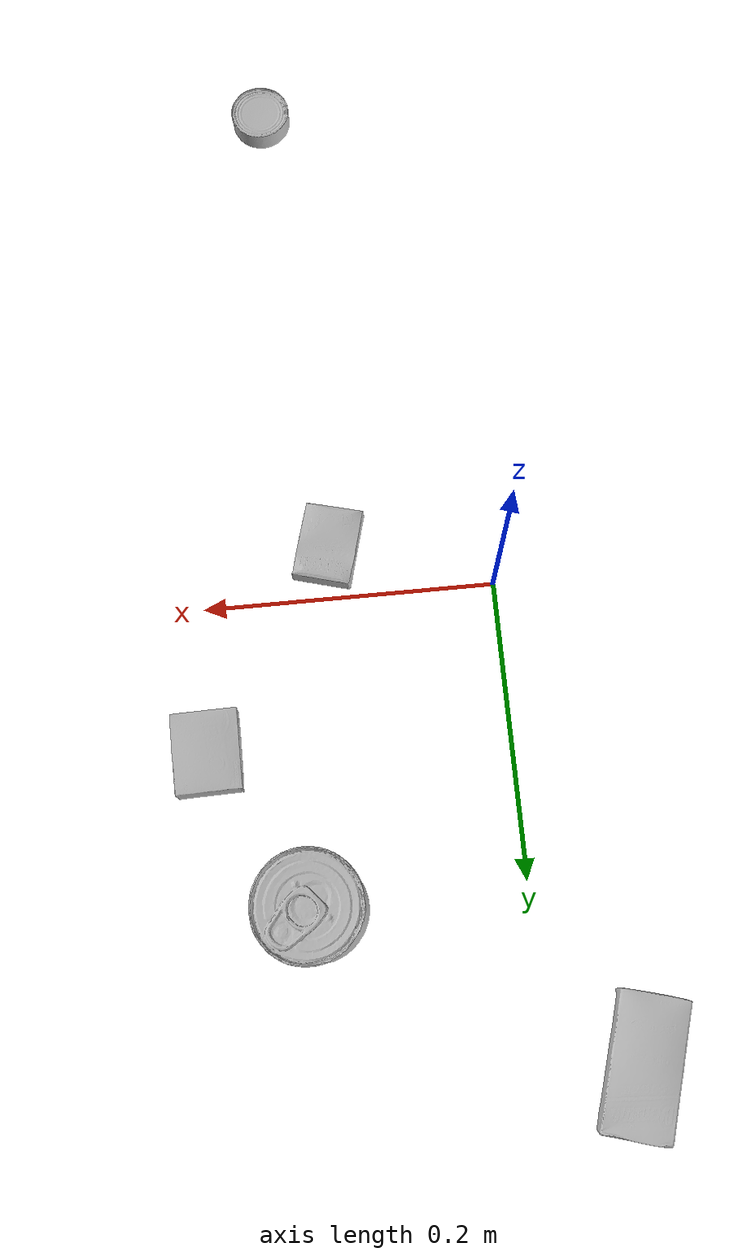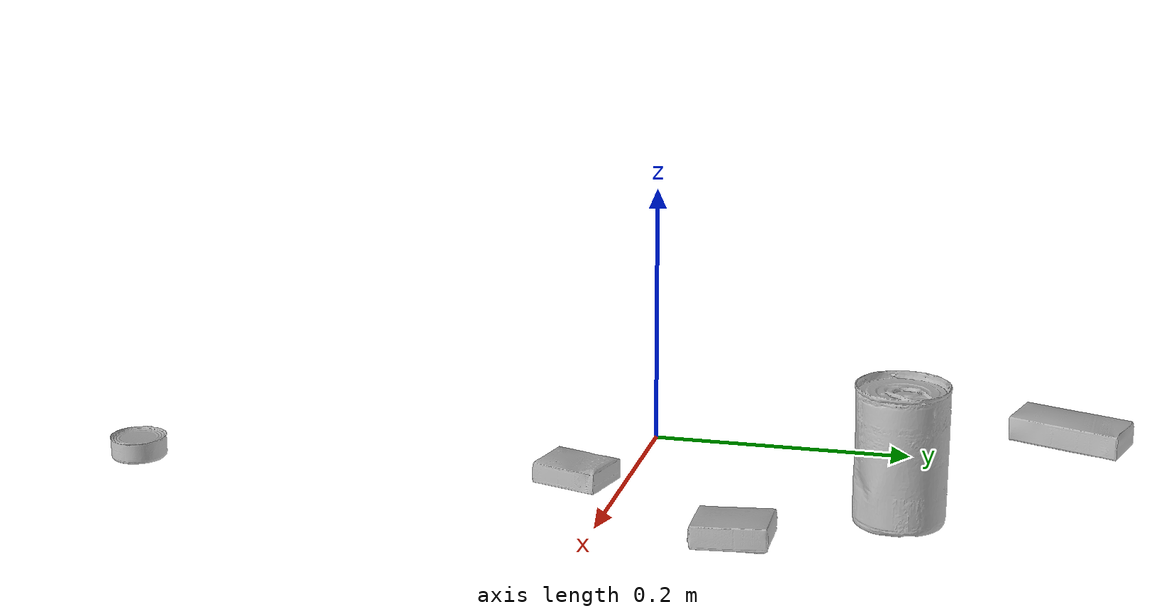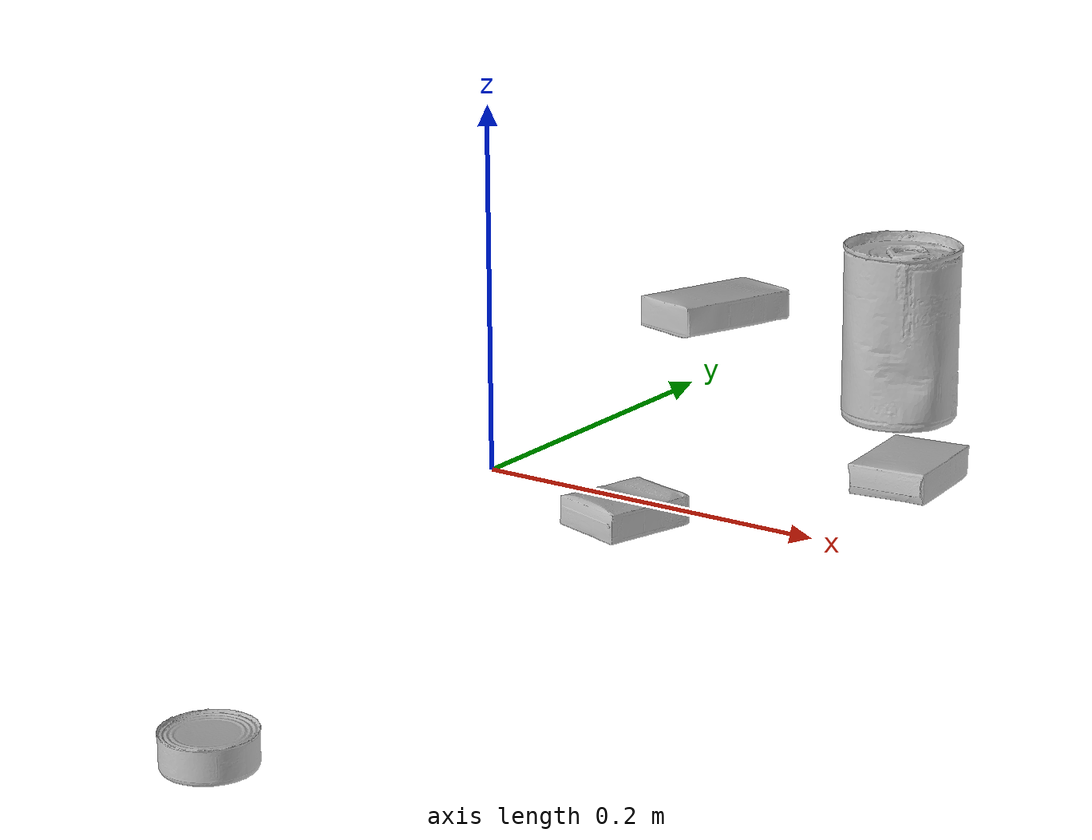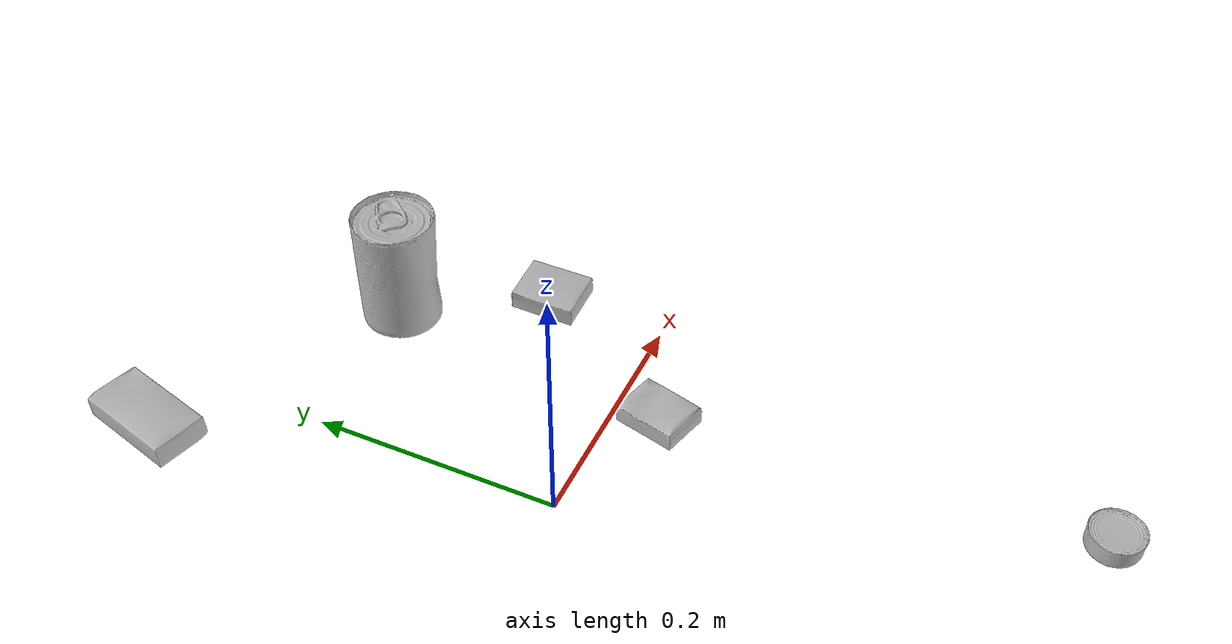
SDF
<sdf version="1.4">
  <world name="default">
    <light name="light1" type="point">
      <pose>0 0 1 0 0 0</pose>
      <diffuse>3 3 3 1</diffuse>
      <specular>3 3 3 1</specular>
    </light>
    <light name="light2" type="point">
      <pose>0 0.5 2 0 0 0</pose>
      <diffuse>1 1 1 1</diffuse>
      <specular>1 1 1 1</specular>
    </light>
    <light name="light3" type="point">
      <pose>0 0.5 2 0 0 0</pose>
      <diffuse>3 3 3 1</diffuse>
      <specular>3 3 3 1</specular>
    </light>
    <scene>
      <ambient>0.7 0.7 0.7</ambient>
    </scene>
    <model name="box1">
      <link name="link_box1">
        <collision name="default">
          <geometry>
            <mesh>
              <uri>model://cracker_box/collision_meshes/collision.obj</uri>
              <scale>0.25 0.25 0.25</scale>
            </mesh>
          </geometry>
          <surface>
            <friction>
              <ode>
                <mu>0.5</mu>
                <mu2>0.5</mu2>
              </ode>
            </friction>
          <contact>
        <ode>
            <max_vel>0</max_vel>
            <min_depth>0.0001</min_depth>
            <kp>1e8</kp>
        </ode>
    </contact></surface>
        </collision>
        <visual name="default">
          <geometry>
            <mesh>
              <uri>model://cracker_box/visual_meshes/visual.dae</uri>
              <scale>0.25 0.25 0.25</scale>
            </mesh>
          </geometry>
        </visual>
        <inertial>
          <mass>0.029061755165457726</mass>
          <pose>0.00023660456645302474 6.358561950037256e-05 -0.0004257383698131889 -0.0003162077745192934 -0.011106489600167671 0.002546795235645709</pose>
          <inertia>
            <ixx>4.620008e-06</ixx>
            <iyy>7.6285405e-06</iyy>
            <izz>1.0886628e-05</izz>
            <ixy>0</ixy>
            <ixz>0</ixz>
            <iyz>0</iyz>
          </inertia>
        </inertial>
      </link>
      <pose>0.11100737750530243 -0.03649935498833656 0.009120449423789978 -0.011788213751124254 -0.0073670475168959235 -1.8374610872088182</pose>
    </model>
    <model name="box2">
      <link name="link_box2">
        <collision name="default">
          <geometry>
            <mesh>
              <uri>model://sugar_box/collision_meshes/collision.obj</uri>
              <scale>0.5 0.5 0.5</scale>
            </mesh>
          </geometry>
          <surface>
            <friction>
              <ode>
                <mu>0.5</mu>
                <mu2>0.5</mu2>
              </ode>
            </friction>
          <contact>
        <ode>
            <max_vel>0</max_vel>
            <min_depth>0.0001</min_depth>
            <kp>1e8</kp>
        </ode>
    </contact></surface>
        </collision>
        <visual name="default">
          <geometry>
            <mesh>
              <uri>model://sugar_box/visual_meshes/visual.dae</uri>
              <scale>0.5 0.5 0.5</scale>
            </mesh>
          </geometry>
        </visual>
        <inertial>
          <mass>0.08909860998392105</mass>
          <pose>0.0005171863595023751 1.924554817378521e-05 -0.00018182402709499002 -0.00040462606756407727 0.0010506635218583888 0.002615378789044619</pose>
          <inertia>
            <ixx>1.8559176e-05</ixx>
            <iyy>5.9987076e-05</iyy>
            <izz>7.181169e-05</izz>
            <ixy>0</ixy>
            <ixz>0</ixz>
            <iyz>0</iyz>
          </inertia>
        </inertial>
      </link>
      <pose>-0.05853666365146637 0.31864383816719055 0.011399301700294018 0.0007754338770382333 -0.023432620455020904 -1.853070065100101</pose>
    </model>
    <model name="box3">
      <link name="link_box3">
        <collision name="default">
          <geometry>
            <mesh>
              <uri>model://pudding_box/collision_meshes/collision.obj</uri>
              <scale>0.5 0.5 0.5</scale>
            </mesh>
          </geometry>
          <surface>
            <friction>
              <ode>
                <mu>0.5</mu>
                <mu2>0.5</mu2>
              </ode>
            </friction>
          <contact>
        <ode>
            <max_vel>0</max_vel>
            <min_depth>0.0001</min_depth>
            <kp>1e8</kp>
        </ode>
    </contact></surface>
        </collision>
        <visual name="default">
          <geometry>
            <mesh>
              <uri>model://pudding_box/visual_meshes/visual.dae</uri>
              <scale>0.5 0.5 0.5</scale>
            </mesh>
          </geometry>
        </visual>
        <inertial>
          <mass>0.058397307991981506</mass>
          <pose>0.00024474109522998333 0.000403394311433658 -0.0002594413817860186 0.005213099939270767 -0.006603797768571226 0.020079825168092046</pose>
          <inertia>
            <ixx>1.650379e-05</ixx>
            <iyy>1.1103868e-05</iyy>
            <izz>2.437216e-05</izz>
            <ixy>0</ixy>
            <ixz>0</ixz>
            <iyz>0</iyz>
          </inertia>
        </inertial>
      </link>
      <pose>0.20116619765758514 0.09916763007640839 0.00986290443688631 0.022348485678369136 -0.01139173769773412 0.024505491788538968</pose>
    </model>
    <model name="can1">
      <link name="link_can1">
        <collision name="default">
          <geometry>
            <mesh>
              <uri>model://tuna_fish_can/collision_meshes/collision.obj</uri>
              <scale>0.5 0.5 0.5</scale>
            </mesh>
          </geometry>
          <surface>
            <friction>
              <ode>
                <mu>0.5</mu>
                <mu2>0.5</mu2>
              </ode>
            </friction>
          <contact>
        <ode>
            <max_vel>0</max_vel>
            <min_depth>0.0001</min_depth>
            <kp>1e8</kp>
        </ode>
    </contact></surface>
        </collision>
        <visual name="default">
          <geometry>
            <mesh>
              <uri>model://tuna_fish_can/visual_meshes/visual.dae</uri>
              <scale>0.5 0.5 0.5</scale>
            </mesh>
          </geometry>
        </visual>
        <inertial>
          <mass>0.024247437715530396</mass>
          <pose>-2.0361860151751898e-05 -7.256063781824196e-06 -0.000526902440469712 -0.0017944785229743307 0.0001716120442354053 0.2405371667019961</pose>
          <inertia>
            <ixx>3.2782896e-06</ixx>
            <iyy>3.2646258e-06</iyy>
            <izz>5.609621e-06</izz>
            <ixy>0</ixy>
            <ixz>0</ixz>
            <iyz>0</iyz>
          </inertia>
        </inertial>
      </link>
      <pose>0.13613541424274445 -0.37838834524154663 0.008519998751580715 3.7376937763120015e-08 -2.149335376500676e-08 1.7136506760638868</pose>
    </model>
    <model name="can2">
      <link name="link_can2">
        <collision name="default">
          <geometry>
            <mesh>
              <uri>model://tomato_soup_can/collision_meshes/collision.obj</uri>
              <scale>1.0 1.0 1.0</scale>
            </mesh>
          </geometry>
          <surface>
            <friction>
              <ode>
                <mu>0.5</mu>
                <mu2>0.5</mu2>
              </ode>
            </friction>
          <contact>
        <ode>
            <max_vel>0</max_vel>
            <min_depth>0.0001</min_depth>
            <kp>1e8</kp>
        </ode>
    </contact></surface>
        </collision>
        <visual name="default">
          <geometry>
            <mesh>
              <uri>model://tomato_soup_can/visual_meshes/visual.dae</uri>
              <scale>1.0 1.0 1.0</scale>
            </mesh>
          </geometry>
        </visual>
        <inertial>
          <mass>0.44329848885536194</mass>
          <pose>0.0001265227037947625 0.00010805520287249237 -0.0017973989015445113 0.007020066893531886 0.00042299576578658417 -0.009903435969571123</pose>
          <inertia>
            <ixx>0.00048603912</ixx>
            <iyy>0.0004832301</iyy>
            <izz>0.00025190957</izz>
            <ixy>0</ixy>
            <ixz>0</ixz>
            <iyz>0</iyz>
          </inertia>
        </inertial>
      </link>
      <pose>0.13642950356006622 0.2064114809036255 0.05127401277422905 -4.650405229861012e-07 -7.149297432420973e-07 2.0182085229925573</pose>
    </model>
  <physics type="ode">
      <max_contacts>50</max_contacts>
      <ode>
        <solver>
          <type>quick</type>
          <iters>75</iters>
        </solver>
        <constraints>
          <contact_max_correcting_vel>0</contact_max_correcting_vel>
          <contact_surface_layer>0</contact_surface_layer>
        </constraints>
      </ode>
    </physics></world>
</sdf>
